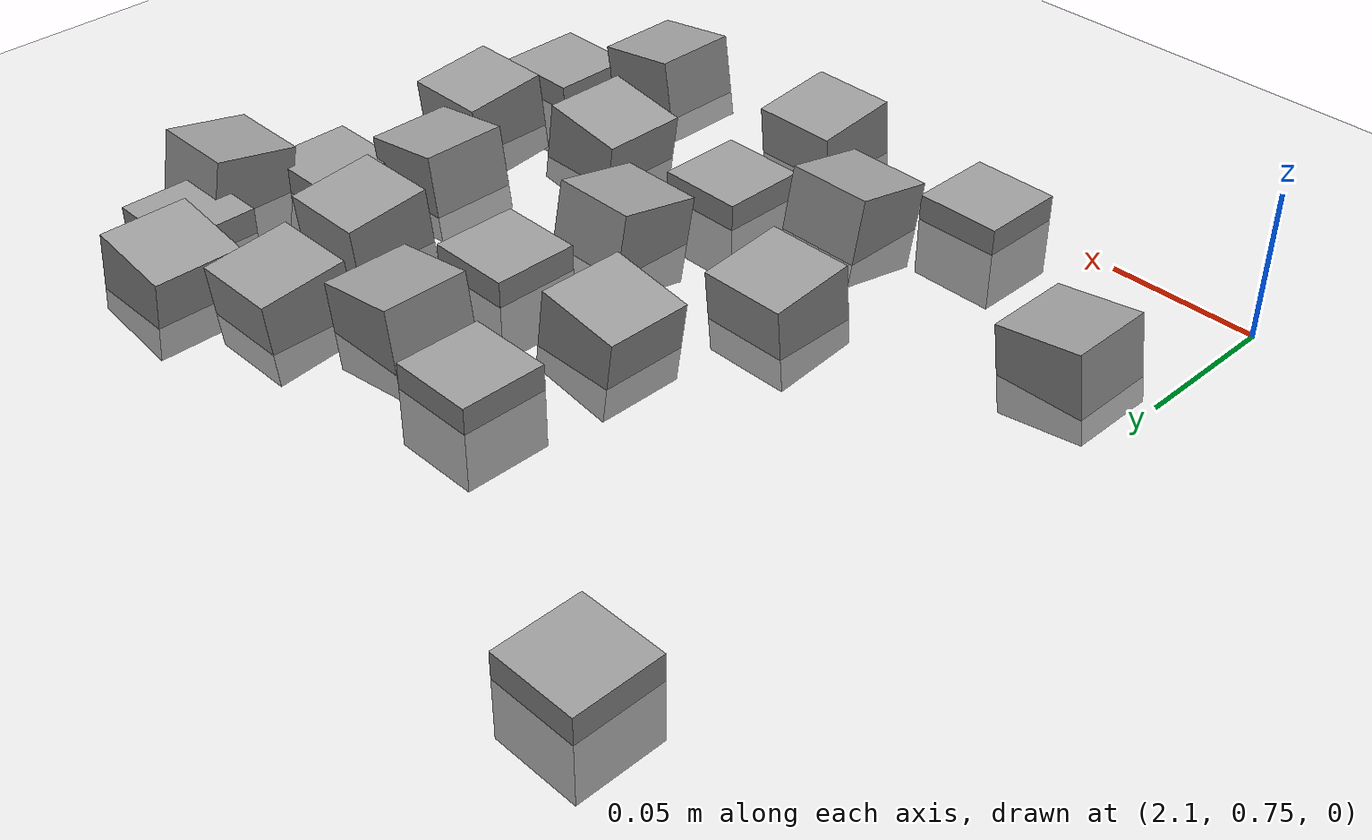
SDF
<sdf version="1.7">
 <world name="default">
  <model name="ground_plane">
   <static>1</static>
   <link name="link">
    <collision name="collision">
     <geometry><plane><normal>0 0 1</normal><size>100 100</size></plane></geometry>
     <surface><friction><ode><mu>100</mu><mu2>50</mu2></ode></friction></surface>
    </collision>
    <visual name="visual">
     <cast_shadows>0</cast_shadows>
     <geometry><plane><normal>0 0 1</normal><size>100 100</size></plane></geometry>
     <material>
      <script><uri>file://media/materials/scripts/gazebo.material</uri><name>Gazebo/Grey</name></script>
     </material>
    </visual>
   </link>
  </model>
  <model name="stone_road_5">
   <link name="link_0_clone_2_clone_2_clone_13_clone_clone_16_clone_19">
    <inertial>
     <mass>1</mass>
     <inertia>
      <ixx>0.166667</ixx>
      <ixy>0</ixy>
      <ixz>0</ixz>
      <iyy>0.166667</iyy>
      <iyz>0</iyz>
      <izz>0.166667</izz>
     </inertia>
    </inertial>
    <pose>0.219442 0.006622 -0.006222 0 -0 0</pose>
    <kinematic>1</kinematic>
    <visual name="visual">
     <geometry><box><size>0.03 0.03 0.03</size></box></geometry>
     <material>
      <lighting>1</lighting>
      <script><uri>file://media/materials/scripts/gazebo.material</uri><name>Gazebo/Grey</name></script>
      <shader type="pixel"><normal_map>__default__</normal_map></shader>
      <ambient>0.3 0.3 0.3 1</ambient>
      <diffuse>0.7 0.7 0.7 1</diffuse>
      <specular>0.01 0.01 0.01 1</specular>
      <emissive>0 0 0 1</emissive>
     </material>
    </visual>
    <collision name="collision">
     <geometry><box><size>0.03 0.03 0.03</size></box></geometry>
     <surface>
      <friction>
       <ode><mu>1</mu><mu2>1</mu2><fdir1>0 0 0</fdir1><slip1>0</slip1><slip2>0</slip2></ode>
       <torsional>
        <coefficient>1</coefficient>
        <patch_radius>0</patch_radius>
        <surface_radius>0</surface_radius>
        <use_patch_radius>1</use_patch_radius>
        <ode><slip>0</slip></ode>
       </torsional>
      </friction>
      <bounce><restitution_coefficient>0</restitution_coefficient><threshold>1e+06</threshold></bounce>
      <contact>
       <collide_without_contact>0</collide_without_contact>
       <collide_without_contact_bitmask>1</collide_without_contact_bitmask>
       <collide_bitmask>1</collide_bitmask>
       <ode>
        <soft_cfm>0</soft_cfm>
        <soft_erp>0.2</soft_erp>
        <kp>1e+13</kp>
        <kd>1</kd>
        <max_vel>0.01</max_vel>
        <min_depth>0</min_depth>
       </ode>
       <bullet>
        <split_impulse>1</split_impulse>
        <split_impulse_penetration_threshold>-0.01</split_impulse_penetration_threshold>
        <soft_cfm>0</soft_cfm>
        <soft_erp>0.2</soft_erp>
        <kp>1e+13</kp>
        <kd>1</kd>
       </bullet>
      </contact>
     </surface>
    </collision>
   </link>
   <static>0</static>
   <pose>1.91599 0.982306 -0 0 -0 0</pose>
  </model>
  <model name="stone_road_8">
   <link name="link_0">
    <inertial>
     <mass>1</mass>
     <inertia>
      <ixx>0.166667</ixx>
      <ixy>0</ixy>
      <ixz>0</ixz>
      <iyy>0.166667</iyy>
      <iyz>0</iyz>
      <izz>0.166667</izz>
     </inertia>
    </inertial>
    <pose>-0.171827 0.03973 0.003778 0.2 -0 0</pose>
    <kinematic>1</kinematic>
    <visual name="visual">
     <geometry><box><size>0.03 0.03 0.03</size></box></geometry>
     <material>
      <lighting>1</lighting>
      <script><uri>file://media/materials/scripts/gazebo.material</uri><name>Gazebo/Grey</name></script>
      <shader type="pixel"><normal_map>__default__</normal_map></shader>
      <ambient>0.3 0.3 0.3 1</ambient>
      <diffuse>0.7 0.7 0.7 1</diffuse>
      <specular>0.01 0.01 0.01 1</specular>
      <emissive>0 0 0 1</emissive>
     </material>
    </visual>
    <collision name="collision">
     <geometry><box><size>0.03 0.03 0.03</size></box></geometry>
     <surface>
      <friction>
       <ode><mu>1</mu><mu2>1</mu2><fdir1>0 0 0</fdir1><slip1>0</slip1><slip2>0</slip2></ode>
       <torsional>
        <coefficient>1</coefficient>
        <patch_radius>0</patch_radius>
        <surface_radius>0</surface_radius>
        <use_patch_radius>1</use_patch_radius>
        <ode><slip>0</slip></ode>
       </torsional>
      </friction>
      <bounce><restitution_coefficient>0</restitution_coefficient><threshold>1e+06</threshold></bounce>
      <contact>
       <collide_without_contact>0</collide_without_contact>
       <collide_without_contact_bitmask>1</collide_without_contact_bitmask>
       <collide_bitmask>1</collide_bitmask>
       <ode>
        <soft_cfm>0</soft_cfm>
        <soft_erp>0.2</soft_erp>
        <kp>1e+13</kp>
        <kd>1</kd>
        <max_vel>0.01</max_vel>
        <min_depth>0</min_depth>
       </ode>
       <bullet>
        <split_impulse>1</split_impulse>
        <split_impulse_penetration_threshold>-0.01</split_impulse_penetration_threshold>
        <soft_cfm>0</soft_cfm>
        <soft_erp>0.2</soft_erp>
        <kp>1e+13</kp>
        <kd>1</kd>
       </bullet>
      </contact>
     </surface>
    </collision>
   </link>
   <link name="link_0_clone_10">
    <inertial>
     <mass>1</mass>
     <inertia>
      <ixx>0.166667</ixx>
      <ixy>0</ixy>
      <ixz>0</ixz>
      <iyy>0.166667</iyy>
      <iyz>0</iyz>
      <izz>0.166667</izz>
     </inertia>
    </inertial>
    <pose>-0.01295 0.17123 0.003778 0.2 -0 0</pose>
    <kinematic>1</kinematic>
    <visual name="visual">
     <geometry><box><size>0.03 0.03 0.03</size></box></geometry>
     <material>
      <lighting>1</lighting>
      <script><uri>file://media/materials/scripts/gazebo.material</uri><name>Gazebo/Grey</name></script>
      <shader type="pixel"><normal_map>__default__</normal_map></shader>
      <ambient>0.3 0.3 0.3 1</ambient>
      <diffuse>0.7 0.7 0.7 1</diffuse>
      <specular>0.01 0.01 0.01 1</specular>
      <emissive>0 0 0 1</emissive>
     </material>
    </visual>
    <collision name="collision">
     <geometry><box><size>0.03 0.03 0.03</size></box></geometry>
     <surface>
      <friction>
       <ode><mu>1</mu><mu2>1</mu2><fdir1>0 0 0</fdir1><slip1>0</slip1><slip2>0</slip2></ode>
       <torsional>
        <coefficient>1</coefficient>
        <patch_radius>0</patch_radius>
        <surface_radius>0</surface_radius>
        <use_patch_radius>1</use_patch_radius>
        <ode><slip>0</slip></ode>
       </torsional>
      </friction>
      <bounce><restitution_coefficient>0</restitution_coefficient><threshold>1e+06</threshold></bounce>
      <contact>
       <collide_without_contact>0</collide_without_contact>
       <collide_without_contact_bitmask>1</collide_without_contact_bitmask>
       <collide_bitmask>1</collide_bitmask>
       <ode>
        <soft_cfm>0</soft_cfm>
        <soft_erp>0.2</soft_erp>
        <kp>1e+13</kp>
        <kd>1</kd>
        <max_vel>0.01</max_vel>
        <min_depth>0</min_depth>
       </ode>
       <bullet>
        <split_impulse>1</split_impulse>
        <split_impulse_penetration_threshold>-0.01</split_impulse_penetration_threshold>
        <soft_cfm>0</soft_cfm>
        <soft_erp>0.2</soft_erp>
        <kp>1e+13</kp>
        <kd>1</kd>
       </bullet>
      </contact>
     </surface>
    </collision>
   </link>
   <link name="link_0_clone_2">
    <inertial>
     <mass>1</mass>
     <inertia>
      <ixx>0.166667</ixx>
      <ixy>0</ixy>
      <ixz>0</ixz>
      <iyy>0.166667</iyy>
      <iyz>0</iyz>
      <izz>0.166667</izz>
     </inertia>
    </inertial>
    <pose>-0.065685 0.018139 0.003778 0 0.15 0</pose>
    <kinematic>1</kinematic>
    <visual name="visual">
     <geometry><box><size>0.03 0.03 0.03</size></box></geometry>
     <material>
      <lighting>1</lighting>
      <script><uri>file://media/materials/scripts/gazebo.material</uri><name>Gazebo/Grey</name></script>
      <shader type="pixel"><normal_map>__default__</normal_map></shader>
      <ambient>0.3 0.3 0.3 1</ambient>
      <diffuse>0.7 0.7 0.7 1</diffuse>
      <specular>0.01 0.01 0.01 1</specular>
      <emissive>0 0 0 1</emissive>
     </material>
    </visual>
    <collision name="collision">
     <geometry><box><size>0.03 0.03 0.03</size></box></geometry>
     <surface>
      <friction>
       <ode><mu>1</mu><mu2>1</mu2><fdir1>0 0 0</fdir1><slip1>0</slip1><slip2>0</slip2></ode>
       <torsional>
        <coefficient>1</coefficient>
        <patch_radius>0</patch_radius>
        <surface_radius>0</surface_radius>
        <use_patch_radius>1</use_patch_radius>
        <ode><slip>0</slip></ode>
       </torsional>
      </friction>
      <bounce><restitution_coefficient>0</restitution_coefficient><threshold>1e+06</threshold></bounce>
      <contact>
       <collide_without_contact>0</collide_without_contact>
       <collide_without_contact_bitmask>1</collide_without_contact_bitmask>
       <collide_bitmask>1</collide_bitmask>
       <ode>
        <soft_cfm>0</soft_cfm>
        <soft_erp>0.2</soft_erp>
        <kp>1e+13</kp>
        <kd>1</kd>
        <max_vel>0.01</max_vel>
        <min_depth>0</min_depth>
       </ode>
       <bullet>
        <split_impulse>1</split_impulse>
        <split_impulse_penetration_threshold>-0.01</split_impulse_penetration_threshold>
        <soft_cfm>0</soft_cfm>
        <soft_erp>0.2</soft_erp>
        <kp>1e+13</kp>
        <kd>1</kd>
       </bullet>
      </contact>
     </surface>
    </collision>
   </link>
   <link name="link_0_clone_2_clone_2_clone_1">
    <inertial>
     <mass>1</mass>
     <inertia>
      <ixx>0.166667</ixx>
      <ixy>0</ixy>
      <ixz>0</ixz>
      <iyy>0.166667</iyy>
      <iyz>0</iyz>
      <izz>0.166667</izz>
     </inertia>
    </inertial>
    <pose>-0.085624 0.065625 0.003778 0 -0.15 0</pose>
    <kinematic>1</kinematic>
    <visual name="visual">
     <geometry><box><size>0.03 0.03 0.03</size></box></geometry>
     <material>
      <lighting>1</lighting>
      <script><uri>file://media/materials/scripts/gazebo.material</uri><name>Gazebo/Grey</name></script>
      <shader type="pixel"><normal_map>__default__</normal_map></shader>
      <ambient>0.3 0.3 0.3 1</ambient>
      <diffuse>0.7 0.7 0.7 1</diffuse>
      <specular>0.01 0.01 0.01 1</specular>
      <emissive>0 0 0 1</emissive>
     </material>
    </visual>
    <collision name="collision">
     <geometry><box><size>0.03 0.03 0.03</size></box></geometry>
     <surface>
      <friction>
       <ode><mu>1</mu><mu2>1</mu2><fdir1>0 0 0</fdir1><slip1>0</slip1><slip2>0</slip2></ode>
       <torsional>
        <coefficient>1</coefficient>
        <patch_radius>0</patch_radius>
        <surface_radius>0</surface_radius>
        <use_patch_radius>1</use_patch_radius>
        <ode><slip>0</slip></ode>
       </torsional>
      </friction>
      <bounce><restitution_coefficient>0</restitution_coefficient><threshold>1e+06</threshold></bounce>
      <contact>
       <collide_without_contact>0</collide_without_contact>
       <collide_without_contact_bitmask>1</collide_without_contact_bitmask>
       <collide_bitmask>1</collide_bitmask>
       <ode>
        <soft_cfm>0</soft_cfm>
        <soft_erp>0.2</soft_erp>
        <kp>1e+13</kp>
        <kd>1</kd>
        <max_vel>0.01</max_vel>
        <min_depth>0</min_depth>
       </ode>
       <bullet>
        <split_impulse>1</split_impulse>
        <split_impulse_penetration_threshold>-0.01</split_impulse_penetration_threshold>
        <soft_cfm>0</soft_cfm>
        <soft_erp>0.2</soft_erp>
        <kp>1e+13</kp>
        <kd>1</kd>
       </bullet>
      </contact>
     </surface>
    </collision>
   </link>
   <link name="link_0_clone_2_clone_2_clone_11">
    <inertial>
     <mass>1</mass>
     <inertia>
      <ixx>0.166667</ixx>
      <ixy>0</ixy>
      <ixz>0</ixz>
      <iyy>0.166667</iyy>
      <iyz>0</iyz>
      <izz>0.166667</izz>
     </inertia>
    </inertial>
    <pose>-0.050382 0.216558 0.003778 0 -0.15 0</pose>
    <kinematic>1</kinematic>
    <visual name="visual">
     <geometry><box><size>0.03 0.03 0.03</size></box></geometry>
     <material>
      <lighting>1</lighting>
      <script><uri>file://media/materials/scripts/gazebo.material</uri><name>Gazebo/Grey</name></script>
      <shader type="pixel"><normal_map>__default__</normal_map></shader>
      <ambient>0.3 0.3 0.3 1</ambient>
      <diffuse>0.7 0.7 0.7 1</diffuse>
      <specular>0.01 0.01 0.01 1</specular>
      <emissive>0 0 0 1</emissive>
     </material>
    </visual>
    <collision name="collision">
     <geometry><box><size>0.03 0.03 0.03</size></box></geometry>
     <surface>
      <friction>
       <ode><mu>1</mu><mu2>1</mu2><fdir1>0 0 0</fdir1><slip1>0</slip1><slip2>0</slip2></ode>
       <torsional>
        <coefficient>1</coefficient>
        <patch_radius>0</patch_radius>
        <surface_radius>0</surface_radius>
        <use_patch_radius>1</use_patch_radius>
        <ode><slip>0</slip></ode>
       </torsional>
      </friction>
      <bounce><restitution_coefficient>0</restitution_coefficient><threshold>1e+06</threshold></bounce>
      <contact>
       <collide_without_contact>0</collide_without_contact>
       <collide_without_contact_bitmask>1</collide_without_contact_bitmask>
       <collide_bitmask>1</collide_bitmask>
       <ode>
        <soft_cfm>0</soft_cfm>
        <soft_erp>0.2</soft_erp>
        <kp>1e+13</kp>
        <kd>1</kd>
        <max_vel>0.01</max_vel>
        <min_depth>0</min_depth>
       </ode>
       <bullet>
        <split_impulse>1</split_impulse>
        <split_impulse_penetration_threshold>-0.01</split_impulse_penetration_threshold>
        <soft_cfm>0</soft_cfm>
        <soft_erp>0.2</soft_erp>
        <kp>1e+13</kp>
        <kd>1</kd>
       </bullet>
      </contact>
     </surface>
    </collision>
   </link>
   <link name="link_0_clone_2_clone_2_clone_13_clone_clone_13">
    <inertial>
     <mass>1</mass>
     <inertia>
      <ixx>0.166667</ixx>
      <ixy>0</ixy>
      <ixz>0</ixz>
      <iyy>0.166667</iyy>
      <iyz>0</iyz>
      <izz>0.166667</izz>
     </inertia>
    </inertial>
    <pose>-0.069861 0.157394 0.003778 -0.1 0 0</pose>
    <kinematic>1</kinematic>
    <visual name="visual">
     <geometry><box><size>0.03 0.03 0.03</size></box></geometry>
     <material>
      <lighting>1</lighting>
      <script><uri>file://media/materials/scripts/gazebo.material</uri><name>Gazebo/Grey</name></script>
      <shader type="pixel"><normal_map>__default__</normal_map></shader>
      <ambient>0.3 0.3 0.3 1</ambient>
      <diffuse>0.7 0.7 0.7 1</diffuse>
      <specular>0.01 0.01 0.01 1</specular>
      <emissive>0 0 0 1</emissive>
     </material>
    </visual>
    <collision name="collision">
     <geometry><box><size>0.03 0.03 0.03</size></box></geometry>
     <surface>
      <friction>
       <ode><mu>1</mu><mu2>1</mu2><fdir1>0 0 0</fdir1><slip1>0</slip1><slip2>0</slip2></ode>
       <torsional>
        <coefficient>1</coefficient>
        <patch_radius>0</patch_radius>
        <surface_radius>0</surface_radius>
        <use_patch_radius>1</use_patch_radius>
        <ode><slip>0</slip></ode>
       </torsional>
      </friction>
      <bounce><restitution_coefficient>0</restitution_coefficient><threshold>1e+06</threshold></bounce>
      <contact>
       <collide_without_contact>0</collide_without_contact>
       <collide_without_contact_bitmask>1</collide_without_contact_bitmask>
       <collide_bitmask>1</collide_bitmask>
       <ode>
        <soft_cfm>0</soft_cfm>
        <soft_erp>0.2</soft_erp>
        <kp>1e+13</kp>
        <kd>1</kd>
        <max_vel>0.01</max_vel>
        <min_depth>0</min_depth>
       </ode>
       <bullet>
        <split_impulse>1</split_impulse>
        <split_impulse_penetration_threshold>-0.01</split_impulse_penetration_threshold>
        <soft_cfm>0</soft_cfm>
        <soft_erp>0.2</soft_erp>
        <kp>1e+13</kp>
        <kd>1</kd>
       </bullet>
      </contact>
     </surface>
    </collision>
   </link>
   <link name="link_0_clone_2_clone_2_clone_13_clone_clone_14">
    <inertial>
     <mass>1</mass>
     <inertia>
      <ixx>0.166667</ixx>
      <ixy>0</ixy>
      <ixz>0</ixz>
      <iyy>0.166667</iyy>
      <iyz>0</iyz>
      <izz>0.166667</izz>
     </inertia>
    </inertial>
    <pose>-0.190578 0.093923 0.003778 -0.1 0 0</pose>
    <kinematic>1</kinematic>
    <visual name="visual">
     <geometry><box><size>0.03 0.03 0.03</size></box></geometry>
     <material>
      <lighting>1</lighting>
      <script><uri>file://media/materials/scripts/gazebo.material</uri><name>Gazebo/Grey</name></script>
      <shader type="pixel"><normal_map>__default__</normal_map></shader>
      <ambient>0.3 0.3 0.3 1</ambient>
      <diffuse>0.7 0.7 0.7 1</diffuse>
      <specular>0.01 0.01 0.01 1</specular>
      <emissive>0 0 0 1</emissive>
     </material>
    </visual>
    <collision name="collision">
     <geometry><box><size>0.03 0.03 0.03</size></box></geometry>
     <surface>
      <friction>
       <ode><mu>1</mu><mu2>1</mu2><fdir1>0 0 0</fdir1><slip1>0</slip1><slip2>0</slip2></ode>
       <torsional>
        <coefficient>1</coefficient>
        <patch_radius>0</patch_radius>
        <surface_radius>0</surface_radius>
        <use_patch_radius>1</use_patch_radius>
        <ode><slip>0</slip></ode>
       </torsional>
      </friction>
      <bounce><restitution_coefficient>0</restitution_coefficient><threshold>1e+06</threshold></bounce>
      <contact>
       <collide_without_contact>0</collide_without_contact>
       <collide_without_contact_bitmask>1</collide_without_contact_bitmask>
       <collide_bitmask>1</collide_bitmask>
       <ode>
        <soft_cfm>0</soft_cfm>
        <soft_erp>0.2</soft_erp>
        <kp>1e+13</kp>
        <kd>1</kd>
        <max_vel>0.01</max_vel>
        <min_depth>0</min_depth>
       </ode>
       <bullet>
        <split_impulse>1</split_impulse>
        <split_impulse_penetration_threshold>-0.01</split_impulse_penetration_threshold>
        <soft_cfm>0</soft_cfm>
        <soft_erp>0.2</soft_erp>
        <kp>1e+13</kp>
        <kd>1</kd>
       </bullet>
      </contact>
     </surface>
    </collision>
   </link>
   <link name="link_0_clone_2_clone_2_clone_13_clone_clone_15">
    <inertial>
     <mass>1</mass>
     <inertia>
      <ixx>0.166667</ixx>
      <ixy>0</ixy>
      <ixz>0</ixz>
      <iyy>0.166667</iyy>
      <iyz>0</iyz>
      <izz>0.166667</izz>
     </inertia>
    </inertial>
    <pose>-0.084893 0.19984 0.003778 -0.1 0 0</pose>
    <kinematic>1</kinematic>
    <visual name="visual">
     <geometry><box><size>0.03 0.03 0.03</size></box></geometry>
     <material>
      <lighting>1</lighting>
      <script><uri>file://media/materials/scripts/gazebo.material</uri><name>Gazebo/Grey</name></script>
      <shader type="pixel"><normal_map>__default__</normal_map></shader>
      <ambient>0.3 0.3 0.3 1</ambient>
      <diffuse>0.7 0.7 0.7 1</diffuse>
      <specular>0.01 0.01 0.01 1</specular>
      <emissive>0 0 0 1</emissive>
     </material>
    </visual>
    <collision name="collision">
     <geometry><box><size>0.03 0.03 0.03</size></box></geometry>
     <surface>
      <friction>
       <ode><mu>1</mu><mu2>1</mu2><fdir1>0 0 0</fdir1><slip1>0</slip1><slip2>0</slip2></ode>
       <torsional>
        <coefficient>1</coefficient>
        <patch_radius>0</patch_radius>
        <surface_radius>0</surface_radius>
        <use_patch_radius>1</use_patch_radius>
        <ode><slip>0</slip></ode>
       </torsional>
      </friction>
      <bounce><restitution_coefficient>0</restitution_coefficient><threshold>1e+06</threshold></bounce>
      <contact>
       <collide_without_contact>0</collide_without_contact>
       <collide_without_contact_bitmask>1</collide_without_contact_bitmask>
       <collide_bitmask>1</collide_bitmask>
       <ode>
        <soft_cfm>0</soft_cfm>
        <soft_erp>0.2</soft_erp>
        <kp>1e+13</kp>
        <kd>1</kd>
        <max_vel>0.01</max_vel>
        <min_depth>0</min_depth>
       </ode>
       <bullet>
        <split_impulse>1</split_impulse>
        <split_impulse_penetration_threshold>-0.01</split_impulse_penetration_threshold>
        <soft_cfm>0</soft_cfm>
        <soft_erp>0.2</soft_erp>
        <kp>1e+13</kp>
        <kd>1</kd>
       </bullet>
      </contact>
     </surface>
    </collision>
   </link>
   <link name="link_0_clone_2_clone_2_clone_13_clone_clone_16_clone_2">
    <inertial>
     <mass>1</mass>
     <inertia>
      <ixx>0.166667</ixx>
      <ixy>0</ixy>
      <ixz>0</ixz>
      <iyy>0.166667</iyy>
      <iyz>0</iyz>
      <izz>0.166667</izz>
     </inertia>
    </inertial>
    <pose>-0.035128 0.040728 -0.006222 0 -0 0</pose>
    <kinematic>1</kinematic>
    <visual name="visual">
     <geometry><box><size>0.03 0.03 0.03</size></box></geometry>
     <material>
      <lighting>1</lighting>
      <script><uri>file://media/materials/scripts/gazebo.material</uri><name>Gazebo/Grey</name></script>
      <shader type="pixel"><normal_map>__default__</normal_map></shader>
      <ambient>0.3 0.3 0.3 1</ambient>
      <diffuse>0.7 0.7 0.7 1</diffuse>
      <specular>0.01 0.01 0.01 1</specular>
      <emissive>0 0 0 1</emissive>
     </material>
    </visual>
    <collision name="collision">
     <geometry><box><size>0.03 0.03 0.03</size></box></geometry>
     <surface>
      <friction>
       <ode><mu>1</mu><mu2>1</mu2><fdir1>0 0 0</fdir1><slip1>0</slip1><slip2>0</slip2></ode>
       <torsional>
        <coefficient>1</coefficient>
        <patch_radius>0</patch_radius>
        <surface_radius>0</surface_radius>
        <use_patch_radius>1</use_patch_radius>
        <ode><slip>0</slip></ode>
       </torsional>
      </friction>
      <bounce><restitution_coefficient>0</restitution_coefficient><threshold>1e+06</threshold></bounce>
      <contact>
       <collide_without_contact>0</collide_without_contact>
       <collide_without_contact_bitmask>1</collide_without_contact_bitmask>
       <collide_bitmask>1</collide_bitmask>
       <ode>
        <soft_cfm>0</soft_cfm>
        <soft_erp>0.2</soft_erp>
        <kp>1e+13</kp>
        <kd>1</kd>
        <max_vel>0.01</max_vel>
        <min_depth>0</min_depth>
       </ode>
       <bullet>
        <split_impulse>1</split_impulse>
        <split_impulse_penetration_threshold>-0.01</split_impulse_penetration_threshold>
        <soft_cfm>0</soft_cfm>
        <soft_erp>0.2</soft_erp>
        <kp>1e+13</kp>
        <kd>1</kd>
       </bullet>
      </contact>
     </surface>
    </collision>
   </link>
   <link name="link_0_clone_2_clone_2_clone_13_clone_clone_16_clone_21">
    <inertial>
     <mass>1</mass>
     <inertia>
      <ixx>0.166667</ixx>
      <ixy>0</ixy>
      <ixz>0</ixz>
      <iyy>0.166667</iyy>
      <iyz>0</iyz>
      <izz>0.166667</izz>
     </inertia>
    </inertial>
    <pose>-0.032398 0.142589 -0.006222 0 -0 0</pose>
    <kinematic>1</kinematic>
    <visual name="visual">
     <geometry><box><size>0.03 0.03 0.03</size></box></geometry>
     <material>
      <lighting>1</lighting>
      <script><uri>file://media/materials/scripts/gazebo.material</uri><name>Gazebo/Grey</name></script>
      <shader type="pixel"><normal_map>__default__</normal_map></shader>
      <ambient>0.3 0.3 0.3 1</ambient>
      <diffuse>0.7 0.7 0.7 1</diffuse>
      <specular>0.01 0.01 0.01 1</specular>
      <emissive>0 0 0 1</emissive>
     </material>
    </visual>
    <collision name="collision">
     <geometry><box><size>0.03 0.03 0.03</size></box></geometry>
     <surface>
      <friction>
       <ode><mu>1</mu><mu2>1</mu2><fdir1>0 0 0</fdir1><slip1>0</slip1><slip2>0</slip2></ode>
       <torsional>
        <coefficient>1</coefficient>
        <patch_radius>0</patch_radius>
        <surface_radius>0</surface_radius>
        <use_patch_radius>1</use_patch_radius>
        <ode><slip>0</slip></ode>
       </torsional>
      </friction>
      <bounce><restitution_coefficient>0</restitution_coefficient><threshold>1e+06</threshold></bounce>
      <contact>
       <collide_without_contact>0</collide_without_contact>
       <collide_without_contact_bitmask>1</collide_without_contact_bitmask>
       <collide_bitmask>1</collide_bitmask>
       <ode>
        <soft_cfm>0</soft_cfm>
        <soft_erp>0.2</soft_erp>
        <kp>1e+13</kp>
        <kd>1</kd>
        <max_vel>0.01</max_vel>
        <min_depth>0</min_depth>
       </ode>
       <bullet>
        <split_impulse>1</split_impulse>
        <split_impulse_penetration_threshold>-0.01</split_impulse_penetration_threshold>
        <soft_cfm>0</soft_cfm>
        <soft_erp>0.2</soft_erp>
        <kp>1e+13</kp>
        <kd>1</kd>
       </bullet>
      </contact>
     </surface>
    </collision>
   </link>
   <link name="link_0_clone_2_clone_2_clone_13_clone_clone_16_clone_22">
    <inertial>
     <mass>1</mass>
     <inertia>
      <ixx>0.166667</ixx>
      <ixy>0</ixy>
      <ixz>0</ixz>
      <iyy>0.166667</iyy>
      <iyz>0</iyz>
      <izz>0.166667</izz>
     </inertia>
    </inertial>
    <pose>-0.025872 0.194724 -0.006222 0 -0 0</pose>
    <kinematic>1</kinematic>
    <visual name="visual">
     <geometry><box><size>0.03 0.03 0.03</size></box></geometry>
     <material>
      <lighting>1</lighting>
      <script><uri>file://media/materials/scripts/gazebo.material</uri><name>Gazebo/Grey</name></script>
      <shader type="pixel"><normal_map>__default__</normal_map></shader>
      <ambient>0.3 0.3 0.3 1</ambient>
      <diffuse>0.7 0.7 0.7 1</diffuse>
      <specular>0.01 0.01 0.01 1</specular>
      <emissive>0 0 0 1</emissive>
     </material>
    </visual>
    <collision name="collision">
     <geometry><box><size>0.03 0.03 0.03</size></box></geometry>
     <surface>
      <friction>
       <ode><mu>1</mu><mu2>1</mu2><fdir1>0 0 0</fdir1><slip1>0</slip1><slip2>0</slip2></ode>
       <torsional>
        <coefficient>1</coefficient>
        <patch_radius>0</patch_radius>
        <surface_radius>0</surface_radius>
        <use_patch_radius>1</use_patch_radius>
        <ode><slip>0</slip></ode>
       </torsional>
      </friction>
      <bounce><restitution_coefficient>0</restitution_coefficient><threshold>1e+06</threshold></bounce>
      <contact>
       <collide_without_contact>0</collide_without_contact>
       <collide_without_contact_bitmask>1</collide_without_contact_bitmask>
       <collide_bitmask>1</collide_bitmask>
       <ode>
        <soft_cfm>0</soft_cfm>
        <soft_erp>0.2</soft_erp>
        <kp>1e+13</kp>
        <kd>1</kd>
        <max_vel>0.01</max_vel>
        <min_depth>0</min_depth>
       </ode>
       <bullet>
        <split_impulse>1</split_impulse>
        <split_impulse_penetration_threshold>-0.01</split_impulse_penetration_threshold>
        <soft_cfm>0</soft_cfm>
        <soft_erp>0.2</soft_erp>
        <kp>1e+13</kp>
        <kd>1</kd>
       </bullet>
      </contact>
     </surface>
    </collision>
   </link>
   <link name="link_0_clone_2_clone_2_clone_13_clone_clone_16_clone_25">
    <inertial>
     <mass>1</mass>
     <inertia>
      <ixx>0.166667</ixx>
      <ixy>0</ixy>
      <ixz>0</ixz>
      <iyy>0.166667</iyy>
      <iyz>0</iyz>
      <izz>0.166667</izz>
     </inertia>
    </inertial>
    <pose>-0.15326 0.182661 -0.006222 0 -0 0</pose>
    <kinematic>1</kinematic>
    <visual name="visual">
     <geometry><box><size>0.03 0.03 0.03</size></box></geometry>
     <material>
      <lighting>1</lighting>
      <script><uri>file://media/materials/scripts/gazebo.material</uri><name>Gazebo/Grey</name></script>
      <shader type="pixel"><normal_map>__default__</normal_map></shader>
      <ambient>0.3 0.3 0.3 1</ambient>
      <diffuse>0.7 0.7 0.7 1</diffuse>
      <specular>0.01 0.01 0.01 1</specular>
      <emissive>0 0 0 1</emissive>
     </material>
    </visual>
    <collision name="collision">
     <geometry><box><size>0.03 0.03 0.03</size></box></geometry>
     <surface>
      <friction>
       <ode><mu>1</mu><mu2>1</mu2><fdir1>0 0 0</fdir1><slip1>0</slip1><slip2>0</slip2></ode>
       <torsional>
        <coefficient>1</coefficient>
        <patch_radius>0</patch_radius>
        <surface_radius>0</surface_radius>
        <use_patch_radius>1</use_patch_radius>
        <ode><slip>0</slip></ode>
       </torsional>
      </friction>
      <bounce><restitution_coefficient>0</restitution_coefficient><threshold>1e+06</threshold></bounce>
      <contact>
       <collide_without_contact>0</collide_without_contact>
       <collide_without_contact_bitmask>1</collide_without_contact_bitmask>
       <collide_bitmask>1</collide_bitmask>
       <ode>
        <soft_cfm>0</soft_cfm>
        <soft_erp>0.2</soft_erp>
        <kp>1e+13</kp>
        <kd>1</kd>
        <max_vel>0.01</max_vel>
        <min_depth>0</min_depth>
       </ode>
       <bullet>
        <split_impulse>1</split_impulse>
        <split_impulse_penetration_threshold>-0.01</split_impulse_penetration_threshold>
        <soft_cfm>0</soft_cfm>
        <soft_erp>0.2</soft_erp>
        <kp>1e+13</kp>
        <kd>1</kd>
       </bullet>
      </contact>
     </surface>
    </collision>
   </link>
   <link name="link_0_clone_2_clone_2_clone_13_clone_clone_16_clone_3">
    <inertial>
     <mass>1</mass>
     <inertia>
      <ixx>0.166667</ixx>
      <ixy>0</ixy>
      <ixz>0</ixz>
      <iyy>0.166667</iyy>
      <iyz>0</iyz>
      <izz>0.166667</izz>
     </inertia>
    </inertial>
    <pose>-0.112739 0.135576 -0.006222 0 -0 0</pose>
    <kinematic>1</kinematic>
    <visual name="visual">
     <geometry><box><size>0.03 0.03 0.03</size></box></geometry>
     <material>
      <lighting>1</lighting>
      <script><uri>file://media/materials/scripts/gazebo.material</uri><name>Gazebo/Grey</name></script>
      <shader type="pixel"><normal_map>__default__</normal_map></shader>
      <ambient>0.3 0.3 0.3 1</ambient>
      <diffuse>0.7 0.7 0.7 1</diffuse>
      <specular>0.01 0.01 0.01 1</specular>
      <emissive>0 0 0 1</emissive>
     </material>
    </visual>
    <collision name="collision">
     <geometry><box><size>0.03 0.03 0.03</size></box></geometry>
     <surface>
      <friction>
       <ode><mu>1</mu><mu2>1</mu2><fdir1>0 0 0</fdir1><slip1>0</slip1><slip2>0</slip2></ode>
       <torsional>
        <coefficient>1</coefficient>
        <patch_radius>0</patch_radius>
        <surface_radius>0</surface_radius>
        <use_patch_radius>1</use_patch_radius>
        <ode><slip>0</slip></ode>
       </torsional>
      </friction>
      <bounce><restitution_coefficient>0</restitution_coefficient><threshold>1e+06</threshold></bounce>
      <contact>
       <collide_without_contact>0</collide_without_contact>
       <collide_without_contact_bitmask>1</collide_without_contact_bitmask>
       <collide_bitmask>1</collide_bitmask>
       <ode>
        <soft_cfm>0</soft_cfm>
        <soft_erp>0.2</soft_erp>
        <kp>1e+13</kp>
        <kd>1</kd>
        <max_vel>0.01</max_vel>
        <min_depth>0</min_depth>
       </ode>
       <bullet>
        <split_impulse>1</split_impulse>
        <split_impulse_penetration_threshold>-0.01</split_impulse_penetration_threshold>
        <soft_cfm>0</soft_cfm>
        <soft_erp>0.2</soft_erp>
        <kp>1e+13</kp>
        <kd>1</kd>
       </bullet>
      </contact>
     </surface>
    </collision>
   </link>
   <link name="link_0_clone_2_clone_2_clone_13_clone_clone_16_clone_31">
    <inertial>
     <mass>1</mass>
     <inertia>
      <ixx>0.166667</ixx>
      <ixy>0</ixy>
      <ixz>0</ixz>
      <iyy>0.166667</iyy>
      <iyz>0</iyz>
      <izz>0.166667</izz>
     </inertia>
    </inertial>
    <pose>-0.198811 0.004584 -0.006222 0 -0 0</pose>
    <kinematic>1</kinematic>
    <visual name="visual">
     <geometry><box><size>0.03 0.03 0.03</size></box></geometry>
     <material>
      <lighting>1</lighting>
      <script><uri>file://media/materials/scripts/gazebo.material</uri><name>Gazebo/Grey</name></script>
      <shader type="pixel"><normal_map>__default__</normal_map></shader>
      <ambient>0.3 0.3 0.3 1</ambient>
      <diffuse>0.7 0.7 0.7 1</diffuse>
      <specular>0.01 0.01 0.01 1</specular>
      <emissive>0 0 0 1</emissive>
     </material>
    </visual>
    <collision name="collision">
     <geometry><box><size>0.03 0.03 0.03</size></box></geometry>
     <surface>
      <friction>
       <ode><mu>1</mu><mu2>1</mu2><fdir1>0 0 0</fdir1><slip1>0</slip1><slip2>0</slip2></ode>
       <torsional>
        <coefficient>1</coefficient>
        <patch_radius>0</patch_radius>
        <surface_radius>0</surface_radius>
        <use_patch_radius>1</use_patch_radius>
        <ode><slip>0</slip></ode>
       </torsional>
      </friction>
      <bounce><restitution_coefficient>0</restitution_coefficient><threshold>1e+06</threshold></bounce>
      <contact>
       <collide_without_contact>0</collide_without_contact>
       <collide_without_contact_bitmask>1</collide_without_contact_bitmask>
       <collide_bitmask>1</collide_bitmask>
       <ode>
        <soft_cfm>0</soft_cfm>
        <soft_erp>0.2</soft_erp>
        <kp>1e+13</kp>
        <kd>1</kd>
        <max_vel>0.01</max_vel>
        <min_depth>0</min_depth>
       </ode>
       <bullet>
        <split_impulse>1</split_impulse>
        <split_impulse_penetration_threshold>-0.01</split_impulse_penetration_threshold>
        <soft_cfm>0</soft_cfm>
        <soft_erp>0.2</soft_erp>
        <kp>1e+13</kp>
        <kd>1</kd>
       </bullet>
      </contact>
     </surface>
    </collision>
   </link>
   <link name="link_0_clone_2_clone_2_clone_13_clone_clone_16_clone_4">
    <inertial>
     <mass>1</mass>
     <inertia>
      <ixx>0.166667</ixx>
      <ixy>0</ixy>
      <ixz>0</ixz>
      <iyy>0.166667</iyy>
      <iyz>0</iyz>
      <izz>0.166667</izz>
     </inertia>
    </inertial>
    <pose>-0.131411 0.053677 -0.006222 0 -0 0</pose>
    <kinematic>1</kinematic>
    <visual name="visual">
     <geometry><box><size>0.03 0.03 0.03</size></box></geometry>
     <material>
      <lighting>1</lighting>
      <script><uri>file://media/materials/scripts/gazebo.material</uri><name>Gazebo/Grey</name></script>
      <shader type="pixel"><normal_map>__default__</normal_map></shader>
      <ambient>0.3 0.3 0.3 1</ambient>
      <diffuse>0.7 0.7 0.7 1</diffuse>
      <specular>0.01 0.01 0.01 1</specular>
      <emissive>0 0 0 1</emissive>
     </material>
    </visual>
    <collision name="collision">
     <geometry><box><size>0.03 0.03 0.03</size></box></geometry>
     <surface>
      <friction>
       <ode><mu>1</mu><mu2>1</mu2><fdir1>0 0 0</fdir1><slip1>0</slip1><slip2>0</slip2></ode>
       <torsional>
        <coefficient>1</coefficient>
        <patch_radius>0</patch_radius>
        <surface_radius>0</surface_radius>
        <use_patch_radius>1</use_patch_radius>
        <ode><slip>0</slip></ode>
       </torsional>
      </friction>
      <bounce><restitution_coefficient>0</restitution_coefficient><threshold>1e+06</threshold></bounce>
      <contact>
       <collide_without_contact>0</collide_without_contact>
       <collide_without_contact_bitmask>1</collide_without_contact_bitmask>
       <collide_bitmask>1</collide_bitmask>
       <ode>
        <soft_cfm>0</soft_cfm>
        <soft_erp>0.2</soft_erp>
        <kp>1e+13</kp>
        <kd>1</kd>
        <max_vel>0.01</max_vel>
        <min_depth>0</min_depth>
       </ode>
       <bullet>
        <split_impulse>1</split_impulse>
        <split_impulse_penetration_threshold>-0.01</split_impulse_penetration_threshold>
        <soft_cfm>0</soft_cfm>
        <soft_erp>0.2</soft_erp>
        <kp>1e+13</kp>
        <kd>1</kd>
       </bullet>
      </contact>
     </surface>
    </collision>
   </link>
   <link name="link_0_clone_2_clone_2_clone_13_clone_clone_2">
    <inertial>
     <mass>1</mass>
     <inertia>
      <ixx>0.166667</ixx>
      <ixy>0</ixy>
      <ixz>0</ixz>
      <iyy>0.166667</iyy>
      <iyz>0</iyz>
      <izz>0.166667</izz>
     </inertia>
    </inertial>
    <pose>-0.037997 0.082571 0.003778 -0.1 0 0</pose>
    <kinematic>1</kinematic>
    <visual name="visual">
     <geometry><box><size>0.03 0.03 0.03</size></box></geometry>
     <material>
      <lighting>1</lighting>
      <script><uri>file://media/materials/scripts/gazebo.material</uri><name>Gazebo/Grey</name></script>
      <shader type="pixel"><normal_map>__default__</normal_map></shader>
      <ambient>0.3 0.3 0.3 1</ambient>
      <diffuse>0.7 0.7 0.7 1</diffuse>
      <specular>0.01 0.01 0.01 1</specular>
      <emissive>0 0 0 1</emissive>
     </material>
    </visual>
    <collision name="collision">
     <geometry><box><size>0.03 0.03 0.03</size></box></geometry>
     <surface>
      <friction>
       <ode><mu>1</mu><mu2>1</mu2><fdir1>0 0 0</fdir1><slip1>0</slip1><slip2>0</slip2></ode>
       <torsional>
        <coefficient>1</coefficient>
        <patch_radius>0</patch_radius>
        <surface_radius>0</surface_radius>
        <use_patch_radius>1</use_patch_radius>
        <ode><slip>0</slip></ode>
       </torsional>
      </friction>
      <bounce><restitution_coefficient>0</restitution_coefficient><threshold>1e+06</threshold></bounce>
      <contact>
       <collide_without_contact>0</collide_without_contact>
       <collide_without_contact_bitmask>1</collide_without_contact_bitmask>
       <collide_bitmask>1</collide_bitmask>
       <ode>
        <soft_cfm>0</soft_cfm>
        <soft_erp>0.2</soft_erp>
        <kp>1e+13</kp>
        <kd>1</kd>
        <max_vel>0.01</max_vel>
        <min_depth>0</min_depth>
       </ode>
       <bullet>
        <split_impulse>1</split_impulse>
        <split_impulse_penetration_threshold>-0.01</split_impulse_penetration_threshold>
        <soft_cfm>0</soft_cfm>
        <soft_erp>0.2</soft_erp>
        <kp>1e+13</kp>
        <kd>1</kd>
       </bullet>
      </contact>
     </surface>
    </collision>
   </link>
   <link name="link_0_clone_2_clone_2_clone_13_clone_clone_7">
    <inertial>
     <mass>1</mass>
     <inertia>
      <ixx>0.166667</ixx>
      <ixy>0</ixy>
      <ixz>0</ixz>
      <iyy>0.166667</iyy>
      <iyz>0</iyz>
      <izz>0.166667</izz>
     </inertia>
    </inertial>
    <pose>-0.133876 0.010561 0.003778 -0.1 0 0</pose>
    <kinematic>1</kinematic>
    <visual name="visual">
     <geometry><box><size>0.03 0.03 0.03</size></box></geometry>
     <material>
      <lighting>1</lighting>
      <script><uri>file://media/materials/scripts/gazebo.material</uri><name>Gazebo/Grey</name></script>
      <shader type="pixel"><normal_map>__default__</normal_map></shader>
      <ambient>0.3 0.3 0.3 1</ambient>
      <diffuse>0.7 0.7 0.7 1</diffuse>
      <specular>0.01 0.01 0.01 1</specular>
      <emissive>0 0 0 1</emissive>
     </material>
    </visual>
    <collision name="collision">
     <geometry><box><size>0.03 0.03 0.03</size></box></geometry>
     <surface>
      <friction>
       <ode><mu>1</mu><mu2>1</mu2><fdir1>0 0 0</fdir1><slip1>0</slip1><slip2>0</slip2></ode>
       <torsional>
        <coefficient>1</coefficient>
        <patch_radius>0</patch_radius>
        <surface_radius>0</surface_radius>
        <use_patch_radius>1</use_patch_radius>
        <ode><slip>0</slip></ode>
       </torsional>
      </friction>
      <bounce><restitution_coefficient>0</restitution_coefficient><threshold>1e+06</threshold></bounce>
      <contact>
       <collide_without_contact>0</collide_without_contact>
       <collide_without_contact_bitmask>1</collide_without_contact_bitmask>
       <collide_bitmask>1</collide_bitmask>
       <ode>
        <soft_cfm>0</soft_cfm>
        <soft_erp>0.2</soft_erp>
        <kp>1e+13</kp>
        <kd>1</kd>
        <max_vel>0.01</max_vel>
        <min_depth>0</min_depth>
       </ode>
       <bullet>
        <split_impulse>1</split_impulse>
        <split_impulse_penetration_threshold>-0.01</split_impulse_penetration_threshold>
        <soft_cfm>0</soft_cfm>
        <soft_erp>0.2</soft_erp>
        <kp>1e+13</kp>
        <kd>1</kd>
       </bullet>
      </contact>
     </surface>
    </collision>
   </link>
   <link name="link_0_clone_2_clone_2_clone_2">
    <inertial>
     <mass>1</mass>
     <inertia>
      <ixx>0.166667</ixx>
      <ixy>0</ixy>
      <ixz>0</ixz>
      <iyy>0.166667</iyy>
      <iyz>0</iyz>
      <izz>0.166667</izz>
     </inertia>
    </inertial>
    <pose>-0.166079 0.139989 0.003778 0 -0.15 0</pose>
    <kinematic>1</kinematic>
    <visual name="visual">
     <geometry><box><size>0.03 0.03 0.03</size></box></geometry>
     <material>
      <lighting>1</lighting>
      <script><uri>file://media/materials/scripts/gazebo.material</uri><name>Gazebo/Grey</name></script>
      <shader type="pixel"><normal_map>__default__</normal_map></shader>
      <ambient>0.3 0.3 0.3 1</ambient>
      <diffuse>0.7 0.7 0.7 1</diffuse>
      <specular>0.01 0.01 0.01 1</specular>
      <emissive>0 0 0 1</emissive>
     </material>
    </visual>
    <collision name="collision">
     <geometry><box><size>0.03 0.03 0.03</size></box></geometry>
     <surface>
      <friction>
       <ode><mu>1</mu><mu2>1</mu2><fdir1>0 0 0</fdir1><slip1>0</slip1><slip2>0</slip2></ode>
       <torsional>
        <coefficient>1</coefficient>
        <patch_radius>0</patch_radius>
        <surface_radius>0</surface_radius>
        <use_patch_radius>1</use_patch_radius>
        <ode><slip>0</slip></ode>
       </torsional>
      </friction>
      <bounce><restitution_coefficient>0</restitution_coefficient><threshold>1e+06</threshold></bounce>
      <contact>
       <collide_without_contact>0</collide_without_contact>
       <collide_without_contact_bitmask>1</collide_without_contact_bitmask>
       <collide_bitmask>1</collide_bitmask>
       <ode>
        <soft_cfm>0</soft_cfm>
        <soft_erp>0.2</soft_erp>
        <kp>1e+13</kp>
        <kd>1</kd>
        <max_vel>0.01</max_vel>
        <min_depth>0</min_depth>
       </ode>
       <bullet>
        <split_impulse>1</split_impulse>
        <split_impulse_penetration_threshold>-0.01</split_impulse_penetration_threshold>
        <soft_cfm>0</soft_cfm>
        <soft_erp>0.2</soft_erp>
        <kp>1e+13</kp>
        <kd>1</kd>
       </bullet>
      </contact>
     </surface>
    </collision>
   </link>
   <link name="link_0_clone_2_clone_3">
    <inertial>
     <mass>1</mass>
     <inertia>
      <ixx>0.166667</ixx>
      <ixy>0</ixy>
      <ixz>0</ixz>
      <iyy>0.166667</iyy>
      <iyz>0</iyz>
      <izz>0.166667</izz>
     </inertia>
    </inertial>
    <pose>-0.058921 0.117271 0.003778 0 0.15 0</pose>
    <kinematic>1</kinematic>
    <visual name="visual">
     <geometry><box><size>0.03 0.03 0.03</size></box></geometry>
     <material>
      <lighting>1</lighting>
      <script><uri>file://media/materials/scripts/gazebo.material</uri><name>Gazebo/Grey</name></script>
      <shader type="pixel"><normal_map>__default__</normal_map></shader>
      <ambient>0.3 0.3 0.3 1</ambient>
      <diffuse>0.7 0.7 0.7 1</diffuse>
      <specular>0.01 0.01 0.01 1</specular>
      <emissive>0 0 0 1</emissive>
     </material>
    </visual>
    <collision name="collision">
     <geometry><box><size>0.03 0.03 0.03</size></box></geometry>
     <surface>
      <friction>
       <ode><mu>1</mu><mu2>1</mu2><fdir1>0 0 0</fdir1><slip1>0</slip1><slip2>0</slip2></ode>
       <torsional>
        <coefficient>1</coefficient>
        <patch_radius>0</patch_radius>
        <surface_radius>0</surface_radius>
        <use_patch_radius>1</use_patch_radius>
        <ode><slip>0</slip></ode>
       </torsional>
      </friction>
      <bounce><restitution_coefficient>0</restitution_coefficient><threshold>1e+06</threshold></bounce>
      <contact>
       <collide_without_contact>0</collide_without_contact>
       <collide_without_contact_bitmask>1</collide_without_contact_bitmask>
       <collide_bitmask>1</collide_bitmask>
       <ode>
        <soft_cfm>0</soft_cfm>
        <soft_erp>0.2</soft_erp>
        <kp>1e+13</kp>
        <kd>1</kd>
        <max_vel>0.01</max_vel>
        <min_depth>0</min_depth>
       </ode>
       <bullet>
        <split_impulse>1</split_impulse>
        <split_impulse_penetration_threshold>-0.01</split_impulse_penetration_threshold>
        <soft_cfm>0</soft_cfm>
        <soft_erp>0.2</soft_erp>
        <kp>1e+13</kp>
        <kd>1</kd>
       </bullet>
      </contact>
     </surface>
    </collision>
   </link>
   <link name="link_0_clone_2_clone_4">
    <inertial>
     <mass>1</mass>
     <inertia>
      <ixx>0.166667</ixx>
      <ixy>0</ixy>
      <ixz>0</ixz>
      <iyy>0.166667</iyy>
      <iyz>0</iyz>
      <izz>0.166667</izz>
     </inertia>
    </inertial>
    <pose>-0.117313 0.179399 0.003778 0 0.15 0</pose>
    <kinematic>1</kinematic>
    <visual name="visual">
     <geometry><box><size>0.03 0.03 0.03</size></box></geometry>
     <material>
      <lighting>1</lighting>
      <script><uri>file://media/materials/scripts/gazebo.material</uri><name>Gazebo/Grey</name></script>
      <shader type="pixel"><normal_map>__default__</normal_map></shader>
      <ambient>0.3 0.3 0.3 1</ambient>
      <diffuse>0.7 0.7 0.7 1</diffuse>
      <specular>0.01 0.01 0.01 1</specular>
      <emissive>0 0 0 1</emissive>
     </material>
    </visual>
    <collision name="collision">
     <geometry><box><size>0.03 0.03 0.03</size></box></geometry>
     <surface>
      <friction>
       <ode><mu>1</mu><mu2>1</mu2><fdir1>0 0 0</fdir1><slip1>0</slip1><slip2>0</slip2></ode>
       <torsional>
        <coefficient>1</coefficient>
        <patch_radius>0</patch_radius>
        <surface_radius>0</surface_radius>
        <use_patch_radius>1</use_patch_radius>
        <ode><slip>0</slip></ode>
       </torsional>
      </friction>
      <bounce><restitution_coefficient>0</restitution_coefficient><threshold>1e+06</threshold></bounce>
      <contact>
       <collide_without_contact>0</collide_without_contact>
       <collide_without_contact_bitmask>1</collide_without_contact_bitmask>
       <collide_bitmask>1</collide_bitmask>
       <ode>
        <soft_cfm>0</soft_cfm>
        <soft_erp>0.2</soft_erp>
        <kp>1e+13</kp>
        <kd>1</kd>
        <max_vel>0.01</max_vel>
        <min_depth>0</min_depth>
       </ode>
       <bullet>
        <split_impulse>1</split_impulse>
        <split_impulse_penetration_threshold>-0.01</split_impulse_penetration_threshold>
        <soft_cfm>0</soft_cfm>
        <soft_erp>0.2</soft_erp>
        <kp>1e+13</kp>
        <kd>1</kd>
       </bullet>
      </contact>
     </surface>
    </collision>
   </link>
   <link name="link_0_clone_2_clone_5">
    <inertial>
     <mass>1</mass>
     <inertia>
      <ixx>0.166667</ixx>
      <ixy>0</ixy>
      <ixz>0</ixz>
      <iyy>0.166667</iyy>
      <iyz>0</iyz>
      <izz>0.166667</izz>
     </inertia>
    </inertial>
    <pose>-0.268485 0.053169 0.003778 0 0.15 0</pose>
    <kinematic>1</kinematic>
    <visual name="visual">
     <geometry><box><size>0.03 0.03 0.03</size></box></geometry>
     <material>
      <lighting>1</lighting>
      <script><uri>file://media/materials/scripts/gazebo.material</uri><name>Gazebo/Grey</name></script>
      <shader type="pixel"><normal_map>__default__</normal_map></shader>
      <ambient>0.3 0.3 0.3 1</ambient>
      <diffuse>0.7 0.7 0.7 1</diffuse>
      <specular>0.01 0.01 0.01 1</specular>
      <emissive>0 0 0 1</emissive>
     </material>
    </visual>
    <collision name="collision">
     <geometry><box><size>0.03 0.03 0.03</size></box></geometry>
     <surface>
      <friction>
       <ode><mu>1</mu><mu2>1</mu2><fdir1>0 0 0</fdir1><slip1>0</slip1><slip2>0</slip2></ode>
       <torsional>
        <coefficient>1</coefficient>
        <patch_radius>0</patch_radius>
        <surface_radius>0</surface_radius>
        <use_patch_radius>1</use_patch_radius>
        <ode><slip>0</slip></ode>
       </torsional>
      </friction>
      <bounce><restitution_coefficient>0</restitution_coefficient><threshold>1e+06</threshold></bounce>
      <contact>
       <collide_without_contact>0</collide_without_contact>
       <collide_without_contact_bitmask>1</collide_without_contact_bitmask>
       <collide_bitmask>1</collide_bitmask>
       <ode>
        <soft_cfm>0</soft_cfm>
        <soft_erp>0.2</soft_erp>
        <kp>1e+13</kp>
        <kd>1</kd>
        <max_vel>0.01</max_vel>
        <min_depth>0</min_depth>
       </ode>
       <bullet>
        <split_impulse>1</split_impulse>
        <split_impulse_penetration_threshold>-0.01</split_impulse_penetration_threshold>
        <soft_cfm>0</soft_cfm>
        <soft_erp>0.2</soft_erp>
        <kp>1e+13</kp>
        <kd>1</kd>
       </bullet>
      </contact>
     </surface>
    </collision>
   </link>
   <link name="link_0_clone_3">
    <inertial>
     <mass>1</mass>
     <inertia>
      <ixx>0.166667</ixx>
      <ixy>0</ixy>
      <ixz>0</ixz>
      <iyy>0.166667</iyy>
      <iyz>0</iyz>
      <izz>0.166667</izz>
     </inertia>
    </inertial>
    <pose>-0.126666 0.098861 0.003778 0.2 -0 0</pose>
    <kinematic>1</kinematic>
    <visual name="visual">
     <geometry><box><size>0.03 0.03 0.03</size></box></geometry>
     <material>
      <lighting>1</lighting>
      <script><uri>file://media/materials/scripts/gazebo.material</uri><name>Gazebo/Grey</name></script>
      <shader type="pixel"><normal_map>__default__</normal_map></shader>
      <ambient>0.3 0.3 0.3 1</ambient>
      <diffuse>0.7 0.7 0.7 1</diffuse>
      <specular>0.01 0.01 0.01 1</specular>
      <emissive>0 0 0 1</emissive>
     </material>
    </visual>
    <collision name="collision">
     <geometry><box><size>0.03 0.03 0.03</size></box></geometry>
     <surface>
      <friction>
       <ode><mu>1</mu><mu2>1</mu2><fdir1>0 0 0</fdir1><slip1>0</slip1><slip2>0</slip2></ode>
       <torsional>
        <coefficient>1</coefficient>
        <patch_radius>0</patch_radius>
        <surface_radius>0</surface_radius>
        <use_patch_radius>1</use_patch_radius>
        <ode><slip>0</slip></ode>
       </torsional>
      </friction>
      <bounce><restitution_coefficient>0</restitution_coefficient><threshold>1e+06</threshold></bounce>
      <contact>
       <collide_without_contact>0</collide_without_contact>
       <collide_without_contact_bitmask>1</collide_without_contact_bitmask>
       <collide_bitmask>1</collide_bitmask>
       <ode>
        <soft_cfm>0</soft_cfm>
        <soft_erp>0.2</soft_erp>
        <kp>1e+13</kp>
        <kd>1</kd>
        <max_vel>0.01</max_vel>
        <min_depth>0</min_depth>
       </ode>
       <bullet>
        <split_impulse>1</split_impulse>
        <split_impulse_penetration_threshold>-0.01</split_impulse_penetration_threshold>
        <soft_cfm>0</soft_cfm>
        <soft_erp>0.2</soft_erp>
        <kp>1e+13</kp>
        <kd>1</kd>
       </bullet>
      </contact>
     </surface>
    </collision>
   </link>
   <static>0</static>
   <pose>2.39572 0.751546 -0 0 -0 0</pose>
  </model>
 </world>
</sdf>
